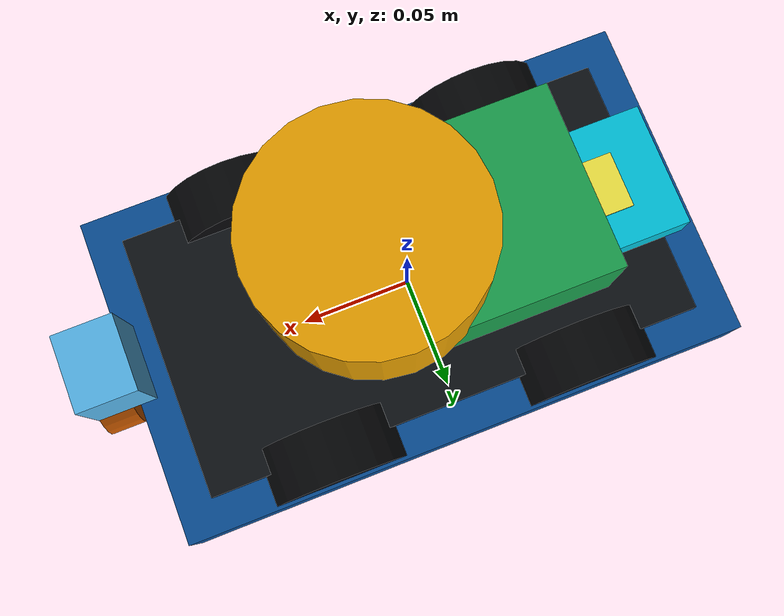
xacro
<?xml version="1.0"?>
<robot name="wildebeest_pro" xmlns:xacro="http://www.ros.org/wiki/xacro">
  <xacro:arg name="name" default="wildebeest_pro"/>
  <xacro:arg name="prefix" default=""/>
  <xacro:arg name="use_gazebo" default="false"/>

  <xacro:include filename="$(find wildebeest_description)/urdf/materials.xacro"/>
  <xacro:include filename="$(find wildebeest_description)/urdf/inertials.xacro"/>
  <xacro:include filename="$(find wildebeest_description)/urdf/wildebeest.gazebo.xacro"/>

  <xacro:property name="prefix" value="$(arg prefix)"/>
  <!-- CAD-derived nominal dimensions; calibrate the assembled chassis. -->
  <xacro:property name="base_length" value="0.257"/>
  <xacro:property name="base_width" value="0.150"/>
  <xacro:property name="base_height" value="0.031"/>
  <xacro:property name="wheel_radius" value="0.033622"/>
  <xacro:property name="wheel_width" value="0.025065"/>
  <xacro:property name="wheel_track" value="0.121843"/>
  <xacro:property name="wheelbase" value="0.117150"/>

  <link name="${prefix}base_footprint"/>

  <joint name="${prefix}base_footprint_joint" type="fixed">
    <parent link="${prefix}base_link"/>
    <child link="${prefix}base_footprint"/>
    <origin xyz="0 0 ${-wheel_radius}" rpy="0 0 0"/>
  </joint>

  <link name="${prefix}base_link">
    <visual>
      <origin xyz="0 0 0" rpy="0 0 0"/>
      <geometry><box size="${base_length} ${base_width} ${base_height}"/></geometry>
      <material name="wildebeest_blue"/>
    </visual>
    <visual>
      <origin xyz="0 0 ${base_height / 2.0 + 0.002}" rpy="0 0 0"/>
      <geometry><box size="0.225 0.120 0.004"/></geometry>
      <material name="wildebeest_graphite"/>
    </visual>
    <collision>
      <geometry><box size="${base_length} ${base_width} ${base_height}"/></geometry>
    </collision>
    <xacro:box_inertial mass="2.4" x="${base_length}" y="${base_width}" z="${base_height}"/>
  </link>

  <xacro:macro name="drive_wheel" params="side axle x y">
    <joint name="${prefix}${side}_${axle}_wheel_joint" type="continuous">
      <parent link="${prefix}base_link"/>
      <child link="${prefix}${side}_${axle}_wheel_link"/>
      <origin xyz="${x} ${y} 0" rpy="0 0 0"/>
      <axis xyz="0 -1 0"/>
      <dynamics damping="0.05" friction="0.02"/>
    </joint>
    <link name="${prefix}${side}_${axle}_wheel_link">
      <visual>
        <origin rpy="${pi / 2.0} 0 0"/>
        <geometry><cylinder radius="${wheel_radius}" length="${wheel_width}"/></geometry>
        <material name="wildebeest_rubber"/>
      </visual>
      <collision>
        <origin rpy="${pi / 2.0} 0 0"/>
        <geometry><cylinder radius="${wheel_radius}" length="${wheel_width}"/></geometry>
      </collision>
      <xacro:cylinder_inertial mass="0.12" radius="${wheel_radius}" length="${wheel_width}" origin_rpy="${pi / 2.0} 0 0"/>
    </link>
  </xacro:macro>
  <xacro:drive_wheel side="left" axle="front" x="${wheelbase / 2.0}" y="${wheel_track / 2.0}"/>
  <xacro:drive_wheel side="left" axle="rear" x="${-wheelbase / 2.0}" y="${wheel_track / 2.0}"/>
  <xacro:drive_wheel side="right" axle="front" x="${wheelbase / 2.0}" y="${-wheel_track / 2.0}"/>
  <xacro:drive_wheel side="right" axle="rear" x="${-wheelbase / 2.0}" y="${-wheel_track / 2.0}"/>

  <joint name="${prefix}jetson_joint" type="fixed">
    <parent link="${prefix}base_link"/>
    <child link="${prefix}jetson_link"/>
    <origin xyz="-0.025 0 0.060"/>
  </joint>
  <link name="${prefix}jetson_link">
    <visual>
      <geometry><box size="0.10 0.08 0.04"/></geometry>
      <material name="wildebeest_green"/>
    </visual>
    <collision><geometry><box size="0.10 0.08 0.04"/></geometry></collision>
    <xacro:box_inertial mass="0.16" x="0.10" y="0.08" z="0.04"/>
  </link>

  <joint name="${prefix}arduino_joint" type="fixed">
    <parent link="${prefix}base_link"/>
    <child link="${prefix}arduino_link"/>
    <origin xyz="-0.082 0 0.038"/>
  </joint>
  <link name="${prefix}arduino_link">
    <visual>
      <geometry><box size="0.07 0.055 0.014"/></geometry>
      <material name="wildebeest_cyan"/>
    </visual>
    <xacro:box_inertial mass="0.04" x="0.07" y="0.055" z="0.014"/>
  </link>

  <joint name="${prefix}lidar_joint" type="fixed">
    <parent link="${prefix}base_link"/>
    <child link="${prefix}lidar_link"/>
    <origin xyz="0.015 0 0.095"/>
  </joint>
  <link name="${prefix}lidar_link">
    <visual>
      <geometry><cylinder radius="0.047" length="0.055"/></geometry>
      <material name="wildebeest_sensor_lidar_orange"/>
    </visual>
    <collision><geometry><cylinder radius="0.047" length="0.055"/></geometry></collision>
    <xacro:cylinder_inertial mass="0.18" radius="0.047" length="0.055"/>
  </link>

  <joint name="${prefix}imu_joint" type="fixed">
    <parent link="${prefix}base_link"/>
    <child link="${prefix}imu_link"/>
    <origin xyz="0 0 0.030"/>
  </joint>
  <link name="${prefix}imu_link">
    <visual>
      <geometry><box size="0.022 0.017 0.004"/></geometry>
      <material name="wildebeest_sensor_imu_rose"/>
    </visual>
    <xacro:box_inertial mass="0.003" x="0.022" y="0.017" z="0.004"/>
  </link>

  <joint name="${prefix}gps_joint" type="fixed">
    <parent link="${prefix}base_link"/>
    <child link="${prefix}gps_link"/>
    <origin xyz="-0.080 0 0.042"/>
  </joint>
  <link name="${prefix}gps_link">
    <visual>
      <geometry><box size="0.035 0.025 0.008"/></geometry>
      <material name="wildebeest_sensor_gnss_yellow"/>
    </visual>
    <xacro:box_inertial mass="0.012" x="0.035" y="0.025" z="0.008"/>
  </link>

  <joint name="${prefix}camera_joint" type="fixed">
    <parent link="${prefix}base_link"/>
    <child link="${prefix}camera_link"/>
    <origin xyz="0.128 0 0.060" rpy="0 0 0"/>
  </joint>
  <link name="${prefix}camera_link">
    <visual>
      <geometry><box size="0.025 0.032 0.032"/></geometry>
      <material name="wildebeest_sensor_camera_sky"/>
    </visual>
    <collision><geometry><box size="0.025 0.032 0.032"/></geometry></collision>
    <xacro:box_inertial mass="0.018" x="0.025" y="0.032" z="0.032"/>
  </link>
  <joint name="${prefix}camera_optical_joint" type="fixed">
    <parent link="${prefix}camera_link"/>
    <child link="${prefix}camera_optical_frame"/>
    <origin rpy="-${pi / 2.0} 0 -${pi / 2.0}"/>
  </joint>
  <link name="${prefix}camera_optical_frame"/>

  <joint name="${prefix}ultrasonic_front_joint" type="fixed">
    <parent link="${prefix}base_link"/>
    <child link="${prefix}ultrasonic_front_link"/>
    <origin xyz="0.136 0 0.018"/>
  </joint>
  <link name="${prefix}ultrasonic_front_link">
    <visual>
      <origin rpy="0 ${pi / 2.0} 0"/>
      <geometry><cylinder radius="0.019" length="0.015"/></geometry>
      <material name="wildebeest_sensor_ultrasonic_vermillion"/>
    </visual>
    <xacro:cylinder_inertial mass="0.009" radius="0.019" length="0.015" origin_rpy="0 ${pi / 2.0} 0"/>
  </link>

  <xacro:if value="$(arg use_gazebo)">
    <xacro:wildebeest_gazebo prefix="${prefix}"/>
  </xacro:if>
</robot>

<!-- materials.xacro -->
<robot xmlns:xacro="http://www.ros.org/wiki/xacro">
  <material name="wildebeest_blue">
    <color rgba="0.035 0.30 0.58 1.0"/>
  </material>
  <material name="wildebeest_cyan">
    <color rgba="0.0 0.76 0.86 1.0"/>
  </material>
  <material name="wildebeest_graphite">
    <color rgba="0.055 0.065 0.08 1.0"/>
  </material>
  <material name="wildebeest_rubber">
    <color rgba="0.018 0.022 0.028 1.0"/>
  </material>
  <material name="wildebeest_green">
    <color rgba="0.10 0.62 0.30 1.0"/>
  </material>

  <!-- Sensor-only colors are based on the color-blind-conscious Okabe-Ito
       palette.  Their semantic names keep RViz and Gazebo visuals legible. -->
  <material name="wildebeest_sensor_lidar_orange">
    <color rgba="0.902 0.624 0.000 1.0"/>
  </material>
  <material name="wildebeest_sensor_imu_rose">
    <color rgba="0.800 0.475 0.655 1.0"/>
  </material>
  <material name="wildebeest_sensor_gnss_yellow">
    <color rgba="0.941 0.894 0.259 1.0"/>
  </material>
  <material name="wildebeest_sensor_camera_sky">
    <color rgba="0.337 0.706 0.914 1.0"/>
  </material>
  <material name="wildebeest_sensor_ultrasonic_vermillion">
    <color rgba="0.835 0.369 0.000 1.0"/>
  </material>
</robot>

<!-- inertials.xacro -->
<robot xmlns:xacro="http://www.ros.org/wiki/xacro">
  <xacro:macro name="box_inertial" params="mass x y z origin_xyz:='0 0 0'">
    <inertial>
      <origin xyz="${origin_xyz}" rpy="0 0 0"/>
      <mass value="${mass}"/>
      <inertia
        ixx="${mass * (y * y + z * z) / 12.0}" ixy="0" ixz="0"
        iyy="${mass * (x * x + z * z) / 12.0}" iyz="0"
        izz="${mass * (x * x + y * y) / 12.0}"/>
    </inertial>
  </xacro:macro>

  <xacro:macro name="cylinder_inertial" params="mass radius length origin_xyz:='0 0 0' origin_rpy:='0 0 0'">
    <inertial>
      <origin xyz="${origin_xyz}" rpy="${origin_rpy}"/>
      <mass value="${mass}"/>
      <inertia
        ixx="${mass * (3.0 * radius * radius + length * length) / 12.0}"
        ixy="0" ixz="0"
        iyy="${mass * (3.0 * radius * radius + length * length) / 12.0}"
        iyz="0" izz="${mass * radius * radius / 2.0}"/>
    </inertial>
  </xacro:macro>

  <xacro:macro name="sphere_inertial" params="mass radius">
    <inertial>
      <mass value="${mass}"/>
      <inertia
        ixx="${0.4 * mass * radius * radius}" ixy="0" ixz="0"
        iyy="${0.4 * mass * radius * radius}" iyz="0"
        izz="${0.4 * mass * radius * radius}"/>
    </inertial>
  </xacro:macro>
</robot>
